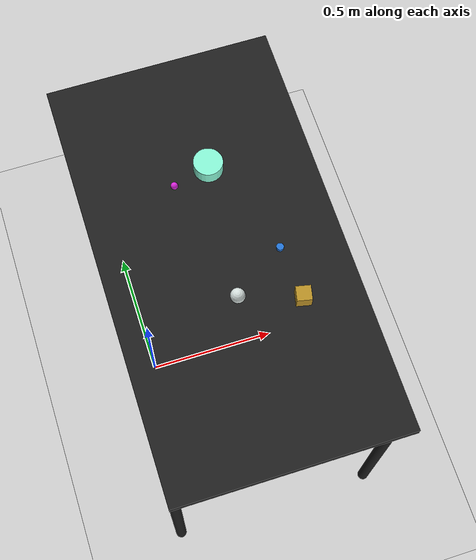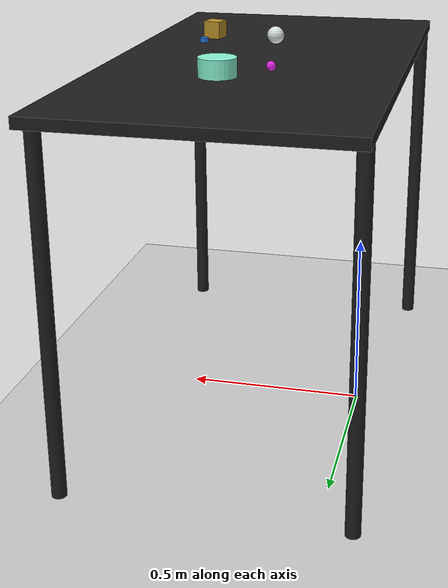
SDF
<?xml version="1.0" ?>
<sdf version="1.6">
  <world name="arm_world">
    <plugin filename="gz-sim-physics-system" name="gz::sim::systems::Physics">
      <engine>
        <filename>libgz-physics-bullet-featherstone-plugin.so</filename>
      </engine>
    </plugin>
    <plugin filename="gz-sim-user-commands-system" name="gz::sim::systems::UserCommands"/>
    <plugin filename="gz-sim-scene-broadcaster-system" name="gz::sim::systems::SceneBroadcaster"/>
    <plugin filename="gz-sim-sensors-system" name="gz::sim::systems::Sensors">
      <render_engine>ogre2</render_engine>
    </plugin>
    <gravity>0.0 0.0 -9.8</gravity>
    <scene>
      <shadows>false</shadows>
    </scene>
    <gui>
      <camera name="user_camera">
        <pose>0.75 -0.75 1.4 0 0.29 2.21</pose>
      </camera>
    </gui>
    <include>
      <uri>https://fuel.gazebosim.org/1.0/OpenRobotics/models/Sun</uri>
    </include>
    <model name="table">
      <static>true</static>
      <include>
        <uri>model://table</uri>
      </include>
      <pose>0.29 0 0 0 0 1.5708</pose>
    </model>
    <model name="ground_plane">
      <static>true</static>
      <link name="link">
        <collision name="collision">
          <geometry>
            <plane>
              <normal>0 0 1</normal>
            </plane>
          </geometry>
          <surface>
            <friction>
              <ode>
                <mu>1.0</mu>
                <mu2>1.0</mu2>
              </ode>
            </friction>
          </surface>
        </collision>
        <visual name="visual">
          <geometry>
            <plane>
              <normal>0 0 1</normal>
              <size>100 100</size>
            </plane>
          </geometry>
          <material>
            <ambient>0.8 0.8 0.8 1</ambient>
            <diffuse>0.8 0.8 0.8 1</diffuse>
            <specular>0.8 0.8 0.8 1</specular>
          </material>
        </visual>
      </link>
    </model>
    <model name="cylinder_l_0">
      <pose>0.337 0.297 1.05 0 0 1.12</pose>
      <link name="cylinder_l_0_link">
        <collision name="cylinder_l_0_collision">
          <geometry>
            <cylinder>
              <radius>0.05</radius>
              <length>0.05</length>
            </cylinder>
          </geometry>
        </collision>
        <visual name="cylinder_l_0_visual">
          <geometry>
            <cylinder>
              <radius>0.05</radius>
              <length>0.05</length>
            </cylinder>
          </geometry>
          <material>
            <ambient>0.54 0.97 0.84 1</ambient>
            <diffuse>0.54 0.97 0.84 1</diffuse>
          </material>
        </visual>
        <velocity_decay>
          <linear>1</linear>
          <angular>1</angular>
        </velocity_decay>
      </link>
    </model>
    <model name="sphere_m_1">
      <pose>0.289 -0.175 1.05 0 0 5.55</pose>
      <link name="sphere_m_1_link">
        <collision name="sphere_m_1_collision">
          <geometry>
            <sphere>
              <radius>0.025</radius>
            </sphere>
          </geometry>
        </collision>
        <visual name="sphere_m_1_visual">
          <geometry>
            <sphere>
              <radius>0.025</radius>
            </sphere>
          </geometry>
          <material>
            <ambient>0.84 0.88 0.87 1</ambient>
            <diffuse>0.84 0.88 0.87 1</diffuse>
          </material>
        </visual>
        <velocity_decay>
          <linear>1</linear>
          <angular>1</angular>
        </velocity_decay>
      </link>
    </model>
    <model name="sphere_s_2">
      <pose>0.208 0.257 1.05 0 0 0.68</pose>
      <link name="sphere_s_2_link">
        <collision name="sphere_s_2_collision">
          <geometry>
            <sphere>
              <radius>0.0125</radius>
            </sphere>
          </geometry>
        </collision>
        <visual name="sphere_s_2_visual">
          <geometry>
            <sphere>
              <radius>0.0125</radius>
            </sphere>
          </geometry>
          <material>
            <ambient>0.87 0.15 0.88 1</ambient>
            <diffuse>0.87 0.15 0.88 1</diffuse>
          </material>
        </visual>
        <velocity_decay>
          <linear>1</linear>
          <angular>1</angular>
        </velocity_decay>
      </link>
    </model>
    <model name="cube_m_3">
      <pose>0.487 -0.238 1.05 0 0 2.93</pose>
      <link name="cube_m_3_link">
        <collision name="cube_m_3_collision">
          <geometry>
            <box>
              <size>0.05 0.05 0.05</size>
            </box>
          </geometry>
        </collision>
        <visual name="cube_m_3_visual">
          <geometry>
            <box>
              <size>0.05 0.05 0.05</size>
            </box>
          </geometry>
          <material>
            <ambient>0.73 0.57 0.15 1</ambient>
            <diffuse>0.73 0.57 0.15 1</diffuse>
          </material>
        </visual>
        <velocity_decay>
          <linear>1</linear>
          <angular>1</angular>
        </velocity_decay>
      </link>
    </model>
    <model name="cylinder_s_4">
      <pose>0.47 -0.057 1.05 0 0 1.67</pose>
      <link name="cylinder_s_4_link">
        <collision name="cylinder_s_4_collision">
          <geometry>
            <cylinder>
              <radius>0.0125</radius>
              <length>0.0125</length>
            </cylinder>
          </geometry>
        </collision>
        <visual name="cylinder_s_4_visual">
          <geometry>
            <cylinder>
              <radius>0.0125</radius>
              <length>0.0125</length>
            </cylinder>
          </geometry>
          <material>
            <ambient>0.14 0.46 0.85 1</ambient>
            <diffuse>0.14 0.46 0.85 1</diffuse>
          </material>
        </visual>
        <velocity_decay>
          <linear>1</linear>
          <angular>1</angular>
        </velocity_decay>
      </link>
    </model>
  </world>
</sdf>

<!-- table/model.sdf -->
<sdf version="1.5">
  <model name="table">
    <static>true</static>
    <link name="link">
      <collision name="surface">
        <pose>0 0 1.0 0 0 0</pose>
        <geometry>
          <box>
            <size>1.5 0.8 0.03</size>
          </box>
        </geometry>
        <surface>
          <friction>
            <ode>
              <mu>0.6</mu>
              <mu2>0.6</mu2>
            </ode>
          </friction>
        </surface>
      </collision>
      <visual name="surface">
        <pose>0 0 1.0 0 0 0</pose>
        <geometry>
          <box>
            <size>1.5 0.8 0.03</size>
          </box>
        </geometry>
        <material>
          <script>
            <uri>file://media/materials/scripts/gazebo.material</uri>
            <name>Gazebo/Black</name>
          </script>
        </material>
      </visual>
      <collision name="front_left_leg">
        <pose>0.68 0.38 0.5 0 0 0</pose>
        <geometry>
          <cylinder>
            <radius>0.02</radius>
            <length>1.0</length>
          </cylinder>
        </geometry>
      </collision>
      <visual name="front_left_leg">
        <pose>0.68 0.38 0.5 0 0 0</pose>
        <geometry>
          <cylinder>
            <radius>0.02</radius>
            <length>1.0</length>
          </cylinder>
        </geometry>
        <material>
          <script>
            <uri>file://media/materials/scripts/gazebo.material</uri>
            <name>Gazebo/Black</name>
          </script>
        </material>
      </visual>
      <collision name="front_right_leg">
        <pose>0.68 -0.38 0.5 0 0 0</pose>
        <geometry>
          <cylinder>
            <radius>0.02</radius>
            <length>1.0</length>
          </cylinder>
        </geometry>
      </collision>
      <visual name="front_right_leg">
        <pose>0.68 -0.38 0.5 0 0 0</pose>
        <geometry>
          <cylinder>
            <radius>0.02</radius>
            <length>1.0</length>
          </cylinder>
        </geometry>
        <material>
          <script>
            <uri>file://media/materials/scripts/gazebo.material</uri>
            <name>Gazebo/Black</name>
          </script>
        </material>
      </visual>
      <collision name="back_right_leg">
        <pose>-0.68 -0.38 0.5 0 0 0</pose>
        <geometry>
          <cylinder>
            <radius>0.02</radius>
            <length>1.0</length>
          </cylinder>
        </geometry>
      </collision>
      <visual name="back_right_leg">
        <pose>-0.68 -0.38 0.5 0 0 0</pose>
        <geometry>
          <cylinder>
            <radius>0.02</radius>
            <length>1.0</length>
          </cylinder>
        </geometry>
        <material>
          <script>
            <uri>file://media/materials/scripts/gazebo.material</uri>
            <name>Gazebo/Black</name>
          </script>
        </material>
      </visual>
      <collision name="back_left_leg">
        <pose>-0.68 0.38 0.5 0 0 0</pose>
        <geometry>
          <cylinder>
            <radius>0.02</radius>
            <length>1.0</length>
          </cylinder>
        </geometry>
      </collision>
      <visual name="back_left_leg">
        <pose>-0.68 0.38 0.5 0 0 0</pose>
        <geometry>
          <cylinder>
            <radius>0.02</radius>
            <length>1.0</length>
          </cylinder>
        </geometry>
        <material>
          <script>
            <uri>file://media/materials/scripts/gazebo.material</uri>
            <name>Gazebo/Black</name>
          </script>
        </material>
      </visual>
    </link>
  </model>
</sdf>
